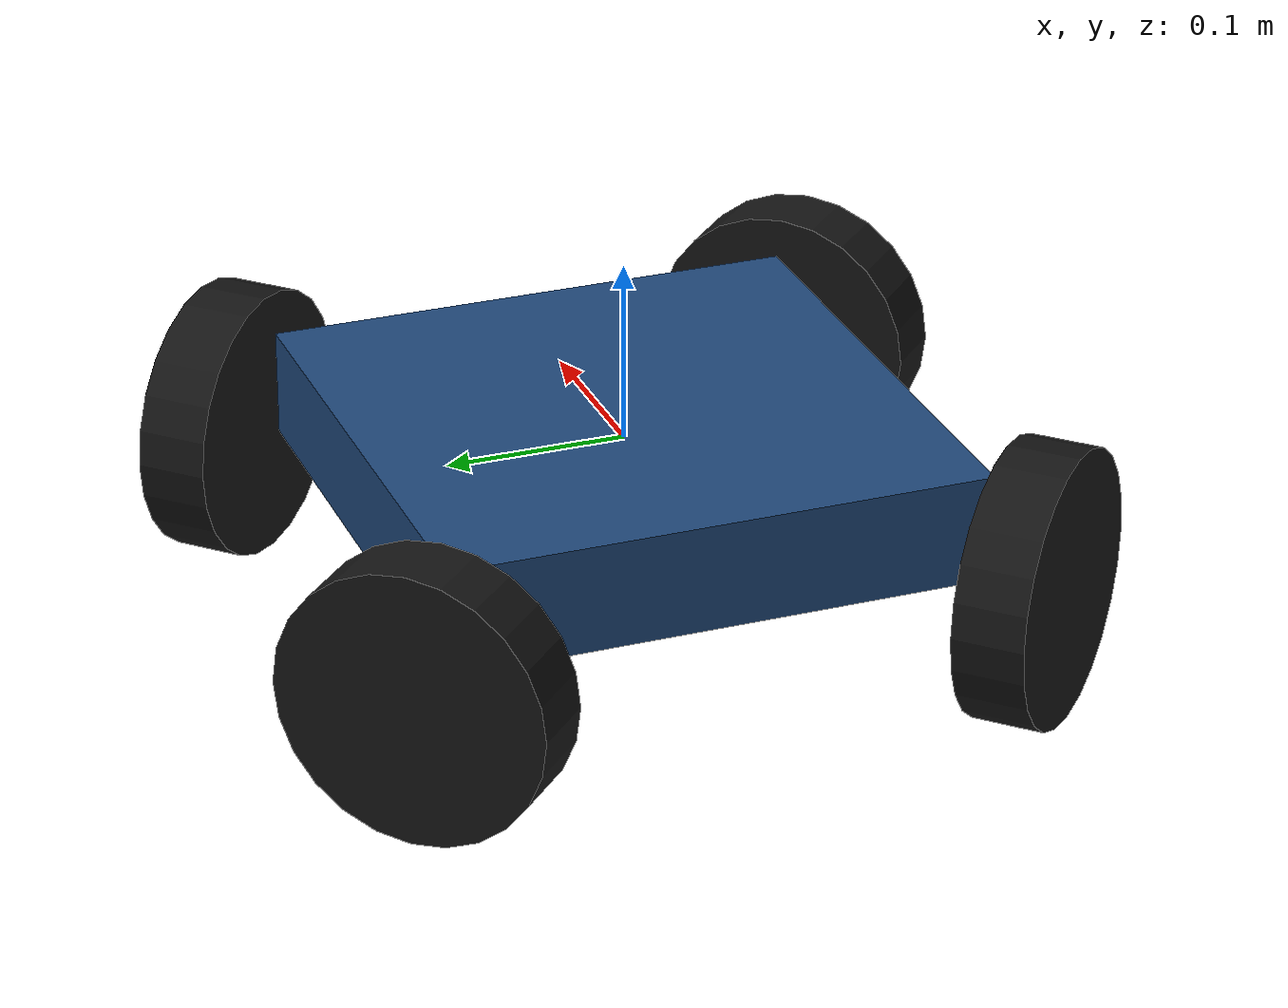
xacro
<?xml version='1.0' encoding='utf-8'?>
<!-- 轻量全向底盘：保留 CAD 四轮 45° 布局，轮子用普通圆柱表达。
     方向摩擦近似滚子的侧向自由度，不创建独立滚子刚体。 -->
<robot name="robovigor_sentry" xmlns:xacro="http://www.ros.org/wiki/xacro">

  <!-- ================= 常量区 ================= -->
  <xacro:property name="wheel_mass" value="0.25"/>
  <xacro:property name="wheel_radius" value="0.0761"/>
  <xacro:property name="wheel_length" value="0.03979804608234"/>

  <xacro:macro name="cad_wheel" params="n xyz ax ay yaw">
    <xacro:property name="offset" value="-0.00150040329349"/>
    <xacro:property name="parallel" value="${wheel_mass * wheel_radius**2 / 2}"/>
    <xacro:property name="perpendicular" value="${wheel_mass * (3 * wheel_radius**2 + wheel_length**2) / 12}"/>
    <link name="wheel_${n}_link">
      <visual>
        <origin xyz="${ax*offset} ${ay*offset} 0" rpy="0 1.5707963267948966 ${yaw}"/>
        <geometry><cylinder radius="${wheel_radius}" length="${wheel_length}"/></geometry>
        <material name="rubber"><color rgba="0.08 0.08 0.08 1"/></material>
      </visual>
      <collision>
        <origin xyz="${ax*offset} ${ay*offset} 0" rpy="0 1.5707963267948966 ${yaw}"/>
        <geometry><cylinder radius="${wheel_radius}" length="${wheel_length}"/></geometry>
      </collision>
      <inertial>
        <origin xyz="${ax*offset} ${ay*offset} 0"/>
        <mass value="${wheel_mass}"/>
        <inertia ixx="${perpendicular + (parallel-perpendicular)*ax*ax}"
                 iyy="${perpendicular + (parallel-perpendicular)*ay*ay}"
                 izz="${perpendicular}"
                 ixy="${(parallel-perpendicular)*ax*ay}" ixz="0" iyz="0"/>
      </inertial>
    </link>
    <joint name="wheel_${n}_joint" type="continuous">
      <parent link="chassis_link"/><child link="wheel_${n}_link"/>
      <origin xyz="${xyz}"/><axis xyz="${ax} ${ay} 0"/>
      <limit effort="1.2" velocity="1000"/>
      <dynamics damping="0.0001" friction="0"/>
    </joint>
  </xacro:macro>

  <!-- ================= 车体（单个实例，直接写死） ================= -->
  <link name="base_link"/>
  <joint name="chassis_fixed" type="fixed">
    <parent link="base_link"/>
    <child link="chassis_link"/>
  </joint>
  <link name="chassis_link">
    <visual>
      <origin xyz="0 0 -0.01"/>
      <geometry><box size="0.30 0.30 0.06"/></geometry>
      <material name="chassis_blue"><color rgba="0.12 0.28 0.48 1"/></material>
    </visual>
    <collision>
      <origin xyz="0 0 0"/>
      <geometry>
        <box size="0.30 0.30 0.08"/>
      </geometry>
    </collision>
    <inertial>
      <origin xyz="0 0 -0.013000"/>
      <mass value="6.5"/>
      <inertia ixx="0.179616667" iyy="0.179616667" izz="0.3159" ixy="0" ixz="0" iyz="0"/>
    </inertial>
  </link>

  <!-- 中心与轴线来自新装配体，单位 m/rad。 -->
  <xacro:cad_wheel n="1" xyz="-0.16731710127 0.16731710127 -0.0362828401707"
                   ax="0.7071067811865475" ay="-0.7071067811865475" yaw="-0.7853981633974483"/>
  <xacro:cad_wheel n="2" xyz="0.16731710127 0.16731710127 -0.0362828401707"
                   ax="-0.7071067811865475" ay="-0.7071067811865475" yaw="-2.356194490192345"/>
  <xacro:cad_wheel n="3" xyz="0.16731710127 -0.16731710127 -0.0362828401707"
                   ax="-0.7071067811865475" ay="0.7071067811865475" yaw="2.356194490192345"/>
  <xacro:cad_wheel n="4" xyz="-0.16731710127 -0.16731710127 -0.0362828401707"
                   ax="0.7071067811865475" ay="0.7071067811865475" yaw="0.7853981633974483"/>
</robot>
